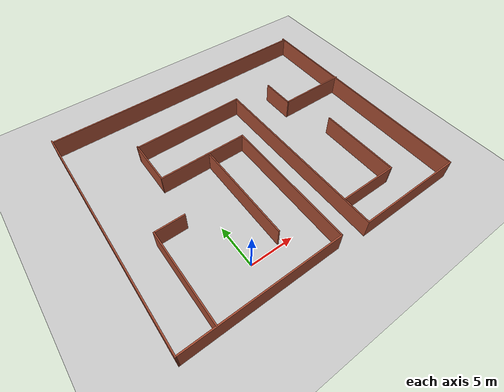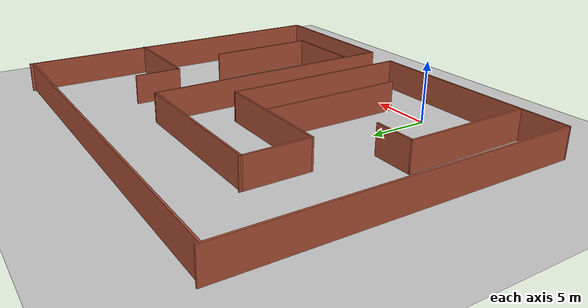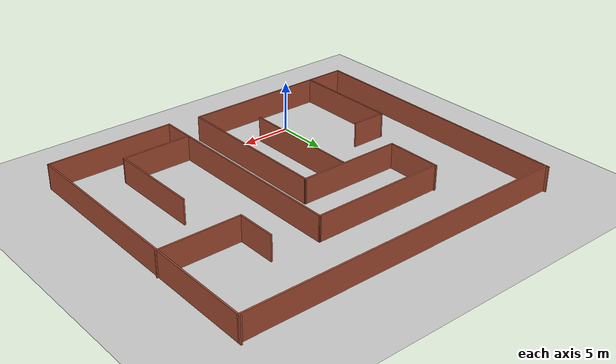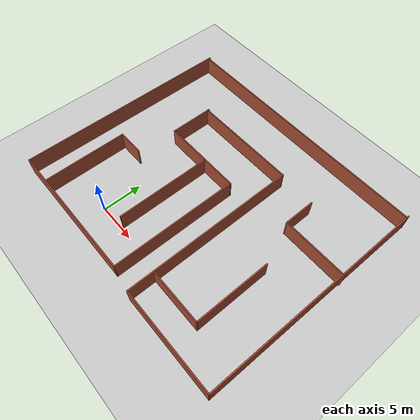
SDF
<sdf version="1.7">
 <world name="default">
  <light name="sun" type="directional">
   <pose>0 0 10 0 -0 0</pose>
   <diffuse>0.8 0.8 0.8 1</diffuse>
   <specular>0.2 0.2 0.2 1</specular>
   <attenuation>
    <range>1000</range>
    <constant>0.9</constant>
    <linear>0.01</linear>
    <quadratic>0.001</quadratic>
   </attenuation>
   <direction>-0.5 0.1 -0.9</direction>
   <spot><inner_angle>0</inner_angle><outer_angle>0</outer_angle><falloff>0</falloff></spot>
  </light>
  <model name="ground_plane">
   <static>1</static>
   <link name="link">
    <collision name="collision">
     <geometry><plane><normal>0 0 1</normal><size>100 100</size></plane></geometry>
     <surface><friction><ode><mu>100</mu><mu2>50</mu2></ode></friction></surface>
    </collision>
    <visual name="visual">
     <cast_shadows>0</cast_shadows>
     <geometry><plane><normal>0 0 1</normal><size>100 100</size></plane></geometry>
     <material>
      <script><uri>file://media/materials/scripts/gazebo.material</uri><name>Gazebo/Grey</name></script>
     </material>
    </visual>
   </link>
  </model>
  <gravity>0 0 -9.8</gravity>
  <magnetic_field>6e-06 2.3e-05 -4.2e-05</magnetic_field>
  <atmosphere type="adiabatic"/>
  <physics type="ode">
   <max_step_size>0.001</max_step_size>
   <real_time_factor>1</real_time_factor>
   <real_time_update_rate>1000</real_time_update_rate>
  </physics>
  <scene><ambient>0.4 0.4 0.4 1</ambient><background>0.7 0.7 0.7 1</background><shadows>1</shadows></scene>
  <spherical_coordinates>
   <surface_model>EARTH_WGS84</surface_model>
   <latitude_deg>0</latitude_deg>
   <longitude_deg>0</longitude_deg>
   <elevation>0</elevation>
   <heading_deg>0</heading_deg>
  </spherical_coordinates>
  <model name="maze">
   <pose>6.93177 10.1459 0 0 -0 0</pose>
   <link name="Wall_18">
    <collision name="Wall_18_Collision">
     <geometry><box><size>16.0421 0.15 2.5</size></box></geometry>
     <pose>0 0 1.25 0 -0 0</pose>
    </collision>
    <visual name="Wall_18_Visual">
     <pose>0 0 1.25 0 -0 0</pose>
     <geometry><box><size>16.0421 0.15 2.5</size></box></geometry>
     <material>
      <script><uri>file://media/materials/scripts/gazebo.material</uri><name>Gazebo/Bricks</name></script>
      <ambient>1 1 1 1</ambient>
     </material>
     <meta><layer>0</layer></meta>
    </visual>
    <pose>0.997971 -5.7056 0 0 -0 1.56937</pose>
   </link>
   <link name="Wall_19">
    <collision name="Wall_19_Collision">
     <geometry><box><size>10.5 0.15 2.5</size></box></geometry>
     <pose>0 0 1.25 0 -0 0</pose>
    </collision>
    <visual name="Wall_19_Visual">
     <pose>0 0 1.25 0 -0 0</pose>
     <geometry><box><size>10.5 0.15 2.5</size></box></geometry>
     <material>
      <script><uri>file://media/materials/scripts/gazebo.material</uri><name>Gazebo/Bricks</name></script>
      <ambient>1 1 1 1</ambient>
     </material>
     <meta><layer>0</layer></meta>
    </visual>
    <pose>-4.16567 2.24044 0 0 -0 3.14159</pose>
   </link>
   <link name="Wall_20">
    <collision name="Wall_20_Collision">
     <geometry><box><size>5.5 0.15 2.5</size></box></geometry>
     <pose>0 0 1.25 0 -0 0</pose>
    </collision>
    <visual name="Wall_20_Visual">
     <pose>0 0 1.25 0 -0 0</pose>
     <geometry><box><size>5.5 0.15 2.5</size></box></geometry>
     <material>
      <script><uri>file://media/materials/scripts/gazebo.material</uri><name>Gazebo/Bricks</name></script>
      <ambient>1 1 1 1</ambient>
     </material>
     <meta><layer>0</layer></meta>
    </visual>
    <pose>-9.34067 5.05457 0 0 -0 1.5708</pose>
   </link>
   <link name="Wall_21">
    <collision name="Wall_21_Collision">
     <geometry><box><size>13.5551 0.15 2.5</size></box></geometry>
     <pose>0 0 1.25 0 -0 0</pose>
    </collision>
    <visual name="Wall_21_Visual">
     <pose>0 0 1.25 0 -0 0</pose>
     <geometry><box><size>13.5551 0.15 2.5</size></box></geometry>
     <material>
      <script><uri>file://media/materials/scripts/gazebo.material</uri><name>Gazebo/Bricks</name></script>
      <ambient>1 1 1 1</ambient>
     </material>
     <meta><layer>0</layer></meta>
    </visual>
    <pose>-2.63849 7.62523 0 0 -0 0.00519</pose>
   </link>
   <link name="Wall_22">
    <collision name="Wall_22_Collision">
     <geometry><box><size>22 0.15 2.5</size></box></geometry>
     <pose>0 0 1.25 0 -0 0</pose>
    </collision>
    <visual name="Wall_22_Visual">
     <pose>0 0 1.25 0 -0 0</pose>
     <geometry><box><size>22 0.15 2.5</size></box></geometry>
     <material>
      <script><uri>file://media/materials/scripts/gazebo.material</uri><name>Gazebo/Bricks</name></script>
      <ambient>1 1 1 1</ambient>
     </material>
     <meta><layer>0</layer></meta>
    </visual>
    <pose>4.06368 -3.26499 0 0 -0 -1.5708</pose>
   </link>
   <link name="Wall_23">
    <collision name="Wall_23_Collision">
     <geometry><box><size>12.75 0.15 2.5</size></box></geometry>
     <pose>0 0 1.25 0 -0 0</pose>
    </collision>
    <visual name="Wall_23_Visual">
     <pose>0 0 1.25 0 -0 0</pose>
     <geometry><box><size>12.75 0.15 2.5</size></box></geometry>
     <material>
      <script><uri>file://media/materials/scripts/gazebo.material</uri><name>Gazebo/Bricks</name></script>
      <ambient>1 1 1 1</ambient>
     </material>
     <meta><layer>0</layer></meta>
    </visual>
    <pose>10.3637 -14.19 0 0 -0 0</pose>
   </link>
   <link name="Wall_24">
    <collision name="Wall_24_Collision">
     <geometry><box><size>28.531 0.15 2.5</size></box></geometry>
     <pose>0 0 1.25 0 -0 0</pose>
    </collision>
    <visual name="Wall_24_Visual">
     <pose>0 0 1.25 0 -0 0</pose>
     <geometry><box><size>28.531 0.15 2.5</size></box></geometry>
     <material>
      <script><uri>file://media/materials/scripts/gazebo.material</uri><name>Gazebo/Bricks</name></script>
      <ambient>1 1 1 1</ambient>
     </material>
     <meta><layer>0</layer></meta>
    </visual>
    <pose>16.7867 -6e-06 0 0 -0 1.56212</pose>
   </link>
   <link name="Wall_25">
    <collision name="Wall_25_Collision">
     <geometry><box><size>33.75 0.15 2.5</size></box></geometry>
     <pose>0 0 1.25 0 -0 0</pose>
    </collision>
    <visual name="Wall_25_Visual">
     <pose>0 0 1.25 0 -0 0</pose>
     <geometry><box><size>33.75 0.15 2.5</size></box></geometry>
     <material>
      <script><uri>file://media/materials/scripts/gazebo.material</uri><name>Gazebo/Bricks</name></script>
      <ambient>1 1 1 1</ambient>
     </material>
     <meta><layer>0</layer></meta>
    </visual>
    <pose>0.109791 13.9439 0 0 -0 3.14159</pose>
   </link>
   <link name="Wall_26">
    <collision name="Wall_26_Collision">
     <geometry><box><size>28.0311 0.15 2.5</size></box></geometry>
     <pose>0 0 1.25 0 -0 0</pose>
    </collision>
    <visual name="Wall_26_Visual">
     <pose>0 0 1.25 0 -0 0</pose>
     <geometry><box><size>28.0311 0.15 2.5</size></box></geometry>
     <material>
      <script><uri>file://media/materials/scripts/gazebo.material</uri><name>Gazebo/Bricks</name></script>
      <ambient>1 1 1 1</ambient>
     </material>
     <meta><layer>0</layer></meta>
    </visual>
    <pose>-16.8133 0.249994 0 0 -0 -1.57962</pose>
   </link>
   <link name="Wall_28">
    <collision name="Wall_28_Collision">
     <geometry><box><size>18 0.15 2.5</size></box></geometry>
     <pose>0 0 1.25 0 -0 0</pose>
    </collision>
    <visual name="Wall_28_Visual">
     <pose>0 0 1.25 0 -0 0</pose>
     <geometry><box><size>18 0.15 2.5</size></box></geometry>
     <material>
      <script><uri>file://media/materials/scripts/gazebo.material</uri><name>Gazebo/Bricks</name></script>
      <ambient>1 1 1 1</ambient>
     </material>
     <meta><layer>0</layer></meta>
    </visual>
    <pose>-8.01132 -13.69 0 0 -0 0</pose>
   </link>
   <link name="Wall_30">
    <collision name="Wall_30_Collision">
     <geometry><box><size>7 0.15 2.5</size></box></geometry>
     <pose>0 0 1.25 0 -0 0</pose>
    </collision>
    <visual name="Wall_30_Visual">
     <pose>0 0 1.25 0 -0 0</pose>
     <geometry><box><size>7 0.15 2.5</size></box></geometry>
     <material>
      <script><uri>file://media/materials/scripts/gazebo.material</uri><name>Gazebo/Bricks</name></script>
      <ambient>1 1 1 1</ambient>
     </material>
     <meta><layer>0</layer></meta>
    </visual>
    <pose>7.54194 -10.9331 0 0 -0 0</pose>
   </link>
   <link name="Wall_31">
    <collision name="Wall_31_Collision">
     <geometry><box><size>9.5 0.15 2.5</size></box></geometry>
     <pose>0 0 1.25 0 -0 0</pose>
    </collision>
    <visual name="Wall_31_Visual">
     <pose>0 0 1.25 0 -0 0</pose>
     <geometry><box><size>9.5 0.15 2.5</size></box></geometry>
     <material>
      <script><uri>file://media/materials/scripts/gazebo.material</uri><name>Gazebo/Bricks</name></script>
      <ambient>1 1 1 1</ambient>
     </material>
     <meta><layer>0</layer></meta>
    </visual>
    <pose>10.9669 -6.25812 0 0 -0 1.5708</pose>
   </link>
   <link name="Wall_33">
    <collision name="Wall_33_Collision">
     <geometry><box><size>8.25 0.15 2.5</size></box></geometry>
     <pose>0 0 1.25 0 -0 0</pose>
    </collision>
    <visual name="Wall_33_Visual">
     <pose>0 0 1.25 0 -0 0</pose>
     <geometry><box><size>8.25 0.15 2.5</size></box></geometry>
     <material>
      <script><uri>file://media/materials/scripts/gazebo.material</uri><name>Gazebo/Bricks</name></script>
      <ambient>1 1 1 1</ambient>
     </material>
     <meta><layer>0</layer></meta>
    </visual>
    <pose>12.887 3.52415 0 0 -0 3.14159</pose>
   </link>
   <link name="Wall_35">
    <collision name="Wall_35_Collision">
     <geometry><box><size>12 0.15 2.5</size></box></geometry>
     <pose>0 0 1.25 0 -0 0</pose>
    </collision>
    <visual name="Wall_35_Visual">
     <pose>0 0 1.25 0 -0 0</pose>
     <geometry><box><size>12 0.15 2.5</size></box></geometry>
     <material>
      <script><uri>file://media/materials/scripts/gazebo.material</uri><name>Gazebo/Bricks</name></script>
      <ambient>1 1 1 1</ambient>
     </material>
     <meta><layer>0</layer></meta>
    </visual>
    <pose>-3.49197 -3.89046 0 0 -0 -1.5708</pose>
   </link>
   <link name="Wall_37">
    <collision name="Wall_37_Collision">
     <geometry><box><size>10.75 0.15 2.5</size></box></geometry>
     <pose>0 0 1.25 0 -0 0</pose>
    </collision>
    <visual name="Wall_37_Visual">
     <pose>0 0 1.25 0 -0 0</pose>
     <geometry><box><size>10.75 0.15 2.5</size></box></geometry>
     <material>
      <script><uri>file://media/materials/scripts/gazebo.material</uri><name>Gazebo/Bricks</name></script>
      <ambient>1 1 1 1</ambient>
     </material>
     <meta><layer>0</layer></meta>
    </visual>
    <pose>-13.068 -8.30637 0 0 -0 1.5708</pose>
   </link>
   <link name="Wall_38">
    <collision name="Wall_38_Collision">
     <geometry><box><size>3.5 0.15 2.5</size></box></geometry>
     <pose>0 0 1.25 0 -0 0</pose>
    </collision>
    <visual name="Wall_38_Visual">
     <pose>0 0 1.25 0 -0 0</pose>
     <geometry><box><size>3.5 0.15 2.5</size></box></geometry>
     <material>
      <script><uri>file://media/materials/scripts/gazebo.material</uri><name>Gazebo/Bricks</name></script>
      <ambient>1 1 1 1</ambient>
     </material>
     <meta><layer>0</layer></meta>
    </visual>
    <pose>-11.393 -3.00637 0 0 -0 0</pose>
   </link>
   <link name="Wall_43">
    <collision name="Wall_43_Collision">
     <geometry><box><size>4 0.15 2.5</size></box></geometry>
     <pose>0 0 1.25 0 -0 0</pose>
    </collision>
    <visual name="Wall_43_Visual">
     <pose>0 0 1.25 0 -0 0</pose>
     <geometry><box><size>4 0.15 2.5</size></box></geometry>
     <material>
      <script><uri>file://media/materials/scripts/gazebo.material</uri><name>Gazebo/Bricks</name></script>
      <ambient>1 1 1 1</ambient>
     </material>
     <meta><layer>0</layer></meta>
    </visual>
    <pose>8.83698 5.44915 0 0 -0 1.5708</pose>
   </link>
   <static>1</static>
  </model>
 </world>
</sdf>
